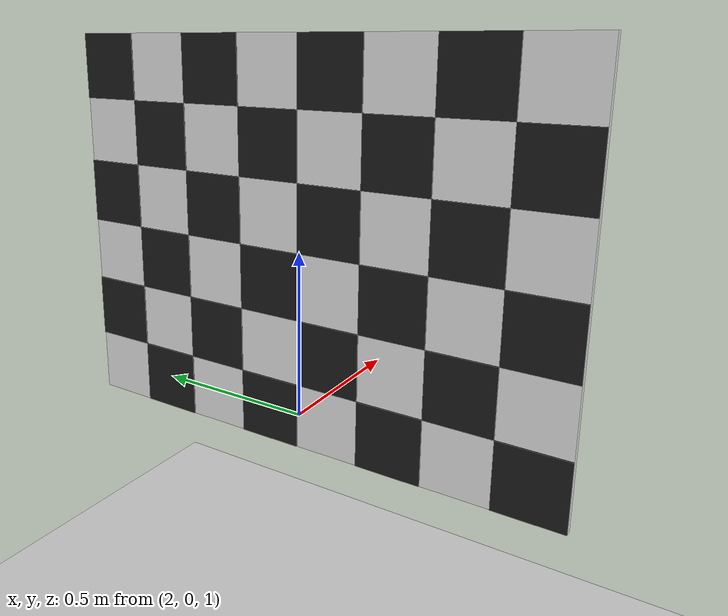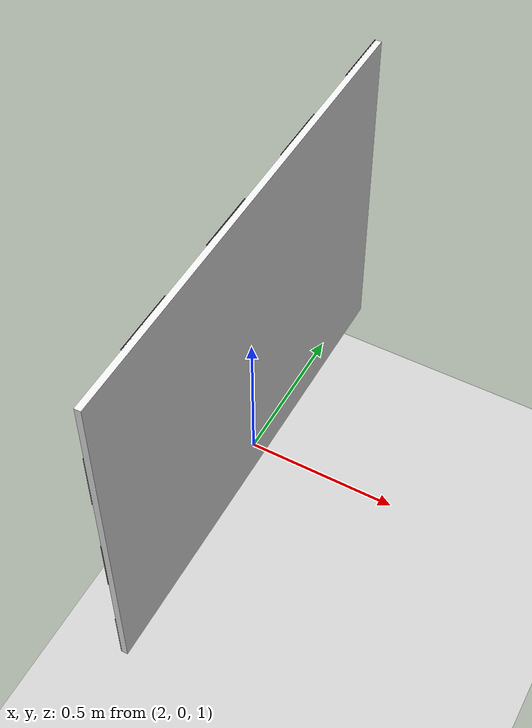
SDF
<?xml version="1.0"?>
<sdf version="1.6">
  <world name="camera_calibration_intrinsic">
    <include><uri>model://sun</uri></include>
    <include><uri>model://ground_plane</uri></include>
    <scene>
      <ambient>0.65 0.65 0.65 1</ambient>
      <background>0.15 0.18 0.22 1</background>
      <shadows>true</shadows>
    </scene>
    <physics name="default_physics" type="ode">
      <max_step_size>0.001</max_step_size>
      <real_time_update_rate>1000</real_time_update_rate>
    </physics>
    <include>
      <uri>model://checkerboard_8x6</uri>
      <name>intrinsic_checkerboard</name>
      <pose>2 0 1.5 0 0 0</pose>
    </include>
  </world>
</sdf>

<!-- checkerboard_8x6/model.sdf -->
<sdf version="1.6">
  <model name="checkerboard_8x6">
    <static>true</static>
    <link name="board">
      <visual name="board_white">
        <geometry><box><size>0.02 1.60 1.20</size></box></geometry>
        <material><script><uri>file://media/materials/scripts/gazebo.material</uri><name>Gazebo/White</name></script></material>
      </visual>
      <collision name="board_collision">
        <geometry><box><size>0.02 1.60 1.20</size></box></geometry>
      </collision>
      <visual name="b_0_0">
        <pose>-0.011 -0.7 -0.5 0 0 0</pose>
        <geometry><box><size>0.004 0.20 0.20</size></box></geometry>
        <material><script><uri>file://media/materials/scripts/gazebo.material</uri><name>Gazebo/Black</name></script></material>
      </visual>
      <visual name="b_2_0">
        <pose>-0.011 -0.3 -0.5 0 0 0</pose>
        <geometry><box><size>0.004 0.20 0.20</size></box></geometry>
        <material><script><uri>file://media/materials/scripts/gazebo.material</uri><name>Gazebo/Black</name></script></material>
      </visual>
      <visual name="b_4_0">
        <pose>-0.011 0.1 -0.5 0 0 0</pose>
        <geometry><box><size>0.004 0.20 0.20</size></box></geometry>
        <material><script><uri>file://media/materials/scripts/gazebo.material</uri><name>Gazebo/Black</name></script></material>
      </visual>
      <visual name="b_6_0">
        <pose>-0.011 0.5 -0.5 0 0 0</pose>
        <geometry><box><size>0.004 0.20 0.20</size></box></geometry>
        <material><script><uri>file://media/materials/scripts/gazebo.material</uri><name>Gazebo/Black</name></script></material>
      </visual>
      <visual name="b_1_1">
        <pose>-0.011 -0.5 -0.3 0 0 0</pose>
        <geometry><box><size>0.004 0.20 0.20</size></box></geometry>
        <material><script><uri>file://media/materials/scripts/gazebo.material</uri><name>Gazebo/Black</name></script></material>
      </visual>
      <visual name="b_3_1">
        <pose>-0.011 -0.1 -0.3 0 0 0</pose>
        <geometry><box><size>0.004 0.20 0.20</size></box></geometry>
        <material><script><uri>file://media/materials/scripts/gazebo.material</uri><name>Gazebo/Black</name></script></material>
      </visual>
      <visual name="b_5_1">
        <pose>-0.011 0.3 -0.3 0 0 0</pose>
        <geometry><box><size>0.004 0.20 0.20</size></box></geometry>
        <material><script><uri>file://media/materials/scripts/gazebo.material</uri><name>Gazebo/Black</name></script></material>
      </visual>
      <visual name="b_7_1">
        <pose>-0.011 0.7 -0.3 0 0 0</pose>
        <geometry><box><size>0.004 0.20 0.20</size></box></geometry>
        <material><script><uri>file://media/materials/scripts/gazebo.material</uri><name>Gazebo/Black</name></script></material>
      </visual>
      <visual name="b_0_2">
        <pose>-0.011 -0.7 -0.1 0 0 0</pose>
        <geometry><box><size>0.004 0.20 0.20</size></box></geometry>
        <material><script><uri>file://media/materials/scripts/gazebo.material</uri><name>Gazebo/Black</name></script></material>
      </visual>
      <visual name="b_2_2">
        <pose>-0.011 -0.3 -0.1 0 0 0</pose>
        <geometry><box><size>0.004 0.20 0.20</size></box></geometry>
        <material><script><uri>file://media/materials/scripts/gazebo.material</uri><name>Gazebo/Black</name></script></material>
      </visual>
      <visual name="b_4_2">
        <pose>-0.011 0.1 -0.1 0 0 0</pose>
        <geometry><box><size>0.004 0.20 0.20</size></box></geometry>
        <material><script><uri>file://media/materials/scripts/gazebo.material</uri><name>Gazebo/Black</name></script></material>
      </visual>
      <visual name="b_6_2">
        <pose>-0.011 0.5 -0.1 0 0 0</pose>
        <geometry><box><size>0.004 0.20 0.20</size></box></geometry>
        <material><script><uri>file://media/materials/scripts/gazebo.material</uri><name>Gazebo/Black</name></script></material>
      </visual>
      <visual name="b_1_3">
        <pose>-0.011 -0.5 0.1 0 0 0</pose>
        <geometry><box><size>0.004 0.20 0.20</size></box></geometry>
        <material><script><uri>file://media/materials/scripts/gazebo.material</uri><name>Gazebo/Black</name></script></material>
      </visual>
      <visual name="b_3_3">
        <pose>-0.011 -0.1 0.1 0 0 0</pose>
        <geometry><box><size>0.004 0.20 0.20</size></box></geometry>
        <material><script><uri>file://media/materials/scripts/gazebo.material</uri><name>Gazebo/Black</name></script></material>
      </visual>
      <visual name="b_5_3">
        <pose>-0.011 0.3 0.1 0 0 0</pose>
        <geometry><box><size>0.004 0.20 0.20</size></box></geometry>
        <material><script><uri>file://media/materials/scripts/gazebo.material</uri><name>Gazebo/Black</name></script></material>
      </visual>
      <visual name="b_7_3">
        <pose>-0.011 0.7 0.1 0 0 0</pose>
        <geometry><box><size>0.004 0.20 0.20</size></box></geometry>
        <material><script><uri>file://media/materials/scripts/gazebo.material</uri><name>Gazebo/Black</name></script></material>
      </visual>
      <visual name="b_0_4">
        <pose>-0.011 -0.7 0.3 0 0 0</pose>
        <geometry><box><size>0.004 0.20 0.20</size></box></geometry>
        <material><script><uri>file://media/materials/scripts/gazebo.material</uri><name>Gazebo/Black</name></script></material>
      </visual>
      <visual name="b_2_4">
        <pose>-0.011 -0.3 0.3 0 0 0</pose>
        <geometry><box><size>0.004 0.20 0.20</size></box></geometry>
        <material><script><uri>file://media/materials/scripts/gazebo.material</uri><name>Gazebo/Black</name></script></material>
      </visual>
      <visual name="b_4_4">
        <pose>-0.011 0.1 0.3 0 0 0</pose>
        <geometry><box><size>0.004 0.20 0.20</size></box></geometry>
        <material><script><uri>file://media/materials/scripts/gazebo.material</uri><name>Gazebo/Black</name></script></material>
      </visual>
      <visual name="b_6_4">
        <pose>-0.011 0.5 0.3 0 0 0</pose>
        <geometry><box><size>0.004 0.20 0.20</size></box></geometry>
        <material><script><uri>file://media/materials/scripts/gazebo.material</uri><name>Gazebo/Black</name></script></material>
      </visual>
      <visual name="b_1_5">
        <pose>-0.011 -0.5 0.5 0 0 0</pose>
        <geometry><box><size>0.004 0.20 0.20</size></box></geometry>
        <material><script><uri>file://media/materials/scripts/gazebo.material</uri><name>Gazebo/Black</name></script></material>
      </visual>
      <visual name="b_3_5">
        <pose>-0.011 -0.1 0.5 0 0 0</pose>
        <geometry><box><size>0.004 0.20 0.20</size></box></geometry>
        <material><script><uri>file://media/materials/scripts/gazebo.material</uri><name>Gazebo/Black</name></script></material>
      </visual>
      <visual name="b_5_5">
        <pose>-0.011 0.3 0.5 0 0 0</pose>
        <geometry><box><size>0.004 0.20 0.20</size></box></geometry>
        <material><script><uri>file://media/materials/scripts/gazebo.material</uri><name>Gazebo/Black</name></script></material>
      </visual>
      <visual name="b_7_5">
        <pose>-0.011 0.7 0.5 0 0 0</pose>
        <geometry><box><size>0.004 0.20 0.20</size></box></geometry>
        <material><script><uri>file://media/materials/scripts/gazebo.material</uri><name>Gazebo/Black</name></script></material>
      </visual>
    </link>
  </model>
</sdf>
